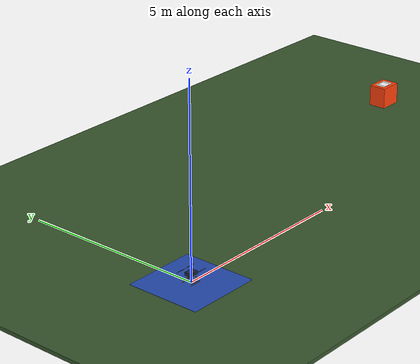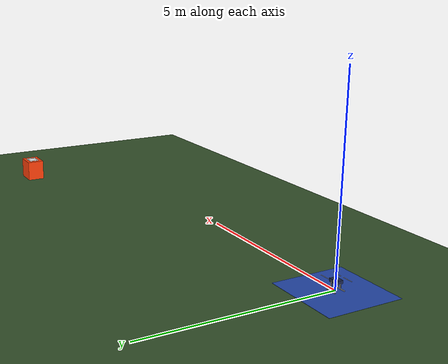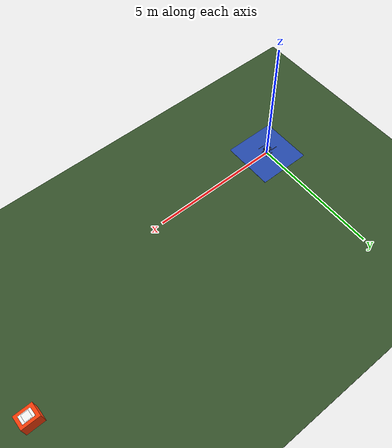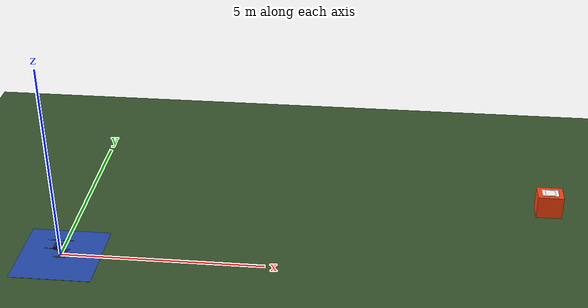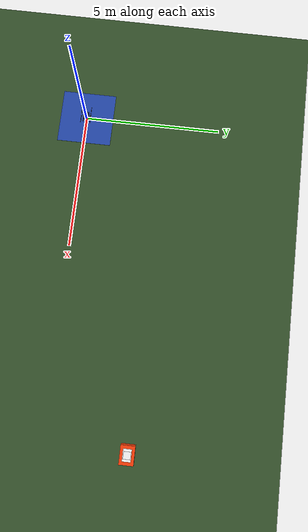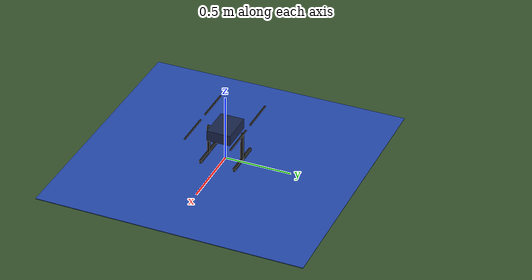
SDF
<?xml version='1.0' encoding='utf-8'?>
<sdf version="1.8">
  <world name="addc">
    <physics name="default" type="ignored">
      <max_step_size>0.004</max_step_size>
      <real_time_factor>1.0</real_time_factor>
    </physics>
    <gravity>0 0 -9.80665</gravity>
    <plugin filename="ignition-gazebo-physics-system" name="ignition::gazebo::systems::Physics" />
    <plugin filename="ignition-gazebo-user-commands-system" name="ignition::gazebo::systems::UserCommands" />
    <plugin filename="ignition-gazebo-scene-broadcaster-system" name="ignition::gazebo::systems::SceneBroadcaster" />
    <plugin filename="ignition-gazebo-imu-system" name="ignition::gazebo::systems::Imu" />
    <plugin filename="ignition-gazebo-air-pressure-system" name="ignition::gazebo::systems::AirPressure" />
    <plugin filename="ignition-gazebo-sensors-system" name="ignition::gazebo::systems::Sensors">
      <render_engine>ogre2</render_engine>
    </plugin>
    <light name="sun" type="directional">
      <pose>0 0 10 0 0 0</pose>
      <diffuse>0.9 0.9 0.9 1</diffuse>
      <specular>0.2 0.2 0.2 1</specular>
      <direction>-0.5 0.1 -0.9</direction>
      <cast_shadows>true</cast_shadows>
      <attenuation>
        <range>1000</range>
        <constant>0.9</constant>
        <linear>0.01</linear>
      </attenuation>
    </light>
    <model name="ground">
      <static>true</static>
      <link name="ground">
        <visual name="field">
          <pose>20 0 -0.05 0 0 0</pose>
          <geometry>
            <box>
              <size>120 100 0.1</size>
            </box>
          </geometry>
          <material>
            <ambient>0.22 0.34 0.18 1</ambient>
            <diffuse>0.22 0.34 0.18 1</diffuse>
          </material>
        </visual>
        <collision name="field_collision">
          <pose>20 0 -0.05 0 0 0</pose>
          <geometry>
            <box>
              <size>120 100 0.1</size>
            </box>
          </geometry>
        </collision>
      </link>
    </model>
    <model name="home_zone">
      <static>true</static>
      <link name="marker">
        <visual name="home">
          <pose>0 0 0.003 0 0 0</pose>
          <geometry>
            <box>
              <size>2 2 0.005</size>
            </box>
          </geometry>
          <material>
            <ambient>0.15 0.3 0.7 1</ambient>
            <diffuse>0.15 0.3 0.7 1</diffuse>
          </material>
        </visual>
      </link>
    </model>
    <include>
      <uri>model://intelligence_cache</uri>
      <pose>12 3 0 0 0 0</pose>
    </include>
    <include>
      <uri>model://addc_quad</uri>
      <name>addc_quad_0</name>
      <pose>0 0 0.24 0 0 0</pose>
    </include>
  </world>
</sdf>

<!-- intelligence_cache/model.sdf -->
<sdf version="1.8">
  <model name="intelligence_cache">
    <static>true</static>
    <link name="cache">
      <visual name="container">
        <pose>0 0 0.3 0 0 0</pose>
        <geometry>
          <box>
            <size>0.65 0.5 0.6</size>
          </box>
        </geometry>
        <material>
          <ambient>1 0.25 0.04 1</ambient>
          <diffuse>1 0.25 0.04 1</diffuse>
        </material>
      </visual>
      <collision name="container_collision">
        <pose>0 0 0.3 0 0 0</pose>
        <geometry>
          <box>
            <size>0.65 0.5 0.6</size>
          </box>
        </geometry>
      </collision>
      <visual name="a3_sheet">
        <pose>0 0 0.602 0 0 0</pose>
        <geometry>
          <box>
            <size>0.420 0.297 0.002</size>
          </box>
        </geometry>
        <material>
          <ambient>1 1 1 1</ambient>
          <diffuse>1 1 1 1</diffuse>
        </material>
      </visual>
      <visual name="qr">
        <pose>0 0 0.604 0 0 0</pose>
        <cast_shadows>false</cast_shadows>
        <geometry>
          <plane>
            <normal>0 0 1</normal>
            <size>0.25 0.25</size>
          </plane>
        </geometry>
        <material>
          <ambient>1 1 1 1</ambient>
          <diffuse>1 1 1 1</diffuse>
          <pbr>
            <metal>
              <albedo_map>model://intelligence_cache/materials/textures/qr.png</albedo_map>
              <metalness>0</metalness>
              <roughness>1</roughness>
            </metal>
          </pbr>
        </material>
      </visual>
    </link>
  </model>
</sdf>

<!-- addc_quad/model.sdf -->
<sdf version="1.8">
  <model name="addc_quad">
    <pose>0 0 0.24 0 0 0</pose>
    <self_collide>false</self_collide>
    <link name="base_link">
      <inertial>
        <mass>1.7</mass>
        <inertia>
          <ixx>0.0217</ixx>
          <iyy>0.0217</iyy>
          <izz>0.04</izz>
          <ixy>0</ixy>
          <ixz>0</ixz>
          <iyz>0</iyz>
        </inertia>
      </inertial>
      <visual name="body">
        <pose>0 0 0 0 0 0</pose>
        <geometry>
          <box>
            <size>0.25 0.18 0.08</size>
          </box>
        </geometry>
        <material>
          <ambient>0.1 0.15 0.3 1</ambient>
          <diffuse>0.1 0.15 0.3 1</diffuse>
        </material>
      </visual>
      <collision name="body_collision">
        <pose>0 0 0 0 0 0</pose>
        <geometry>
          <box>
            <size>0.25 0.18 0.08</size>
          </box>
        </geometry>
      </collision>
      <visual name="leg_0">
        <pose>0 -0.13 -0.22 0 0 0</pose>
        <geometry>
          <box>
            <size>0.3 0.02 0.02</size>
          </box>
        </geometry>
        <material>
          <ambient>0.1 0.1 0.1 1</ambient>
          <diffuse>0.1 0.1 0.1 1</diffuse>
        </material>
      </visual>
      <collision name="leg_0_collision">
        <pose>0 -0.13 -0.22 0 0 0</pose>
        <geometry>
          <box>
            <size>0.3 0.02 0.02</size>
          </box>
        </geometry>
      </collision>
      <visual name="strut_0">
        <pose>0 -0.13 -0.11 0 0 0</pose>
        <geometry>
          <box>
            <size>0.02 0.02 0.22</size>
          </box>
        </geometry>
        <material>
          <ambient>0.1 0.1 0.1 1</ambient>
          <diffuse>0.1 0.1 0.1 1</diffuse>
        </material>
      </visual>
      <collision name="strut_0_collision">
        <pose>0 -0.13 -0.11 0 0 0</pose>
        <geometry>
          <box>
            <size>0.02 0.02 0.22</size>
          </box>
        </geometry>
      </collision>
      <visual name="leg_1">
        <pose>0 0.13 -0.22 0 0 0</pose>
        <geometry>
          <box>
            <size>0.3 0.02 0.02</size>
          </box>
        </geometry>
        <material>
          <ambient>0.1 0.1 0.1 1</ambient>
          <diffuse>0.1 0.1 0.1 1</diffuse>
        </material>
      </visual>
      <collision name="leg_1_collision">
        <pose>0 0.13 -0.22 0 0 0</pose>
        <geometry>
          <box>
            <size>0.3 0.02 0.02</size>
          </box>
        </geometry>
      </collision>
      <visual name="strut_1">
        <pose>0 0.13 -0.11 0 0 0</pose>
        <geometry>
          <box>
            <size>0.02 0.02 0.22</size>
          </box>
        </geometry>
        <material>
          <ambient>0.1 0.1 0.1 1</ambient>
          <diffuse>0.1 0.1 0.1 1</diffuse>
        </material>
      </visual>
      <collision name="strut_1_collision">
        <pose>0 0.13 -0.11 0 0 0</pose>
        <geometry>
          <box>
            <size>0.02 0.02 0.22</size>
          </box>
        </geometry>
      </collision>
      <sensor name="imu_sensor" type="imu">
        <always_on>true</always_on>
        <update_rate>250</update_rate>
      </sensor>
      <sensor name="air_pressure_sensor" type="air_pressure">
        <always_on>true</always_on>
        <update_rate>50</update_rate>
      </sensor>
      <sensor name="discovery_camera" type="camera">
        <pose>0.2 0.0 -0.05 0 0.4363323129985824 0</pose>
        <always_on>true</always_on>
        <update_rate>15.0</update_rate>
        <topic>/camera/discovery/image</topic>
        <camera name="discovery">
          <horizontal_fov>1.0471975511965976</horizontal_fov>
          <optical_frame_id>discovery_camera_optical</optical_frame_id>
          <camera_info_topic>/camera/discovery/camera_info</camera_info_topic>
          <image>
            <width>1920</width>
            <height>1080</height>
            <format>R8G8B8</format>
          </image>
          <clip>
            <near>0.05</near>
            <far>100</far>
          </clip>
        </camera>
      </sensor>
      <sensor name="down_camera" type="camera">
        <pose>0.0 0.0 -0.1 0 1.5707963267948966 0</pose>
        <always_on>true</always_on>
        <update_rate>15.0</update_rate>
        <topic>/camera/down/image</topic>
        <camera name="down">
          <horizontal_fov>1.0471975511965976</horizontal_fov>
          <optical_frame_id>down_camera_optical</optical_frame_id>
          <camera_info_topic>/camera/down/camera_info</camera_info_topic>
          <image>
            <width>1920</width>
            <height>1080</height>
            <format>R8G8B8</format>
          </image>
          <clip>
            <near>0.05</near>
            <far>100</far>
          </clip>
        </camera>
      </sensor>
    </link>
    <link name="rotor_0">
      <pose>0.174 -0.174 0.06 0 0 0</pose>
      <inertial>
        <mass>0.016</mass>
        <inertia>
          <ixx>3.85e-07</ixx>
          <iyy>2.61e-05</iyy>
          <izz>2.65e-05</izz>
        </inertia>
      </inertial>
      <visual name="propeller">
        <pose>0 0 0 0 0 0</pose>
        <geometry>
          <box>
            <size>0.28 0.015 0.003</size>
          </box>
        </geometry>
        <material>
          <ambient>0.1 0.1 0.1 1</ambient>
          <diffuse>0.1 0.1 0.1 1</diffuse>
        </material>
      </visual>
    </link>
    <joint name="rotor_0_joint" type="revolute">
      <parent>base_link</parent>
      <child>rotor_0</child>
      <axis>
        <xyz>0 0 1</xyz>
        <limit>
          <lower>-1e16</lower>
          <upper>1e16</upper>
        </limit>
      </axis>
    </joint>
    <plugin filename="ignition-gazebo-multicopter-motor-model-system" name="ignition::gazebo::systems::MulticopterMotorModel">
      <robotNamespace>addc_quad_0</robotNamespace>
      <jointName>rotor_0_joint</jointName>
      <linkName>rotor_0</linkName>
      <turningDirection>ccw</turningDirection>
      <timeConstantUp>0.0125</timeConstantUp>
      <timeConstantDown>0.025</timeConstantDown>
      <maxRotVelocity>1000</maxRotVelocity>
      <motorConstant>8.54858e-06</motorConstant>
      <momentConstant>0.016</momentConstant>
      <commandSubTopic>command/motor_speed</commandSubTopic>
      <motorNumber>0</motorNumber>
      <rotorDragCoefficient>8.06428e-05</rotorDragCoefficient>
      <rollingMomentCoefficient>1e-06</rollingMomentCoefficient>
      <rotorVelocitySlowdownSim>10</rotorVelocitySlowdownSim>
      <motorType>velocity</motorType>
    </plugin>
    <link name="rotor_1">
      <pose>-0.174 0.174 0.06 0 0 0</pose>
      <inertial>
        <mass>0.016</mass>
        <inertia>
          <ixx>3.85e-07</ixx>
          <iyy>2.61e-05</iyy>
          <izz>2.65e-05</izz>
        </inertia>
      </inertial>
      <visual name="propeller">
        <pose>0 0 0 0 0 0</pose>
        <geometry>
          <box>
            <size>0.28 0.015 0.003</size>
          </box>
        </geometry>
        <material>
          <ambient>0.1 0.1 0.1 1</ambient>
          <diffuse>0.1 0.1 0.1 1</diffuse>
        </material>
      </visual>
    </link>
    <joint name="rotor_1_joint" type="revolute">
      <parent>base_link</parent>
      <child>rotor_1</child>
      <axis>
        <xyz>0 0 1</xyz>
        <limit>
          <lower>-1e16</lower>
          <upper>1e16</upper>
        </limit>
      </axis>
    </joint>
    <plugin filename="ignition-gazebo-multicopter-motor-model-system" name="ignition::gazebo::systems::MulticopterMotorModel">
      <robotNamespace>addc_quad_0</robotNamespace>
      <jointName>rotor_1_joint</jointName>
      <linkName>rotor_1</linkName>
      <turningDirection>ccw</turningDirection>
      <timeConstantUp>0.0125</timeConstantUp>
      <timeConstantDown>0.025</timeConstantDown>
      <maxRotVelocity>1000</maxRotVelocity>
      <motorConstant>8.54858e-06</motorConstant>
      <momentConstant>0.016</momentConstant>
      <commandSubTopic>command/motor_speed</commandSubTopic>
      <motorNumber>1</motorNumber>
      <rotorDragCoefficient>8.06428e-05</rotorDragCoefficient>
      <rollingMomentCoefficient>1e-06</rollingMomentCoefficient>
      <rotorVelocitySlowdownSim>10</rotorVelocitySlowdownSim>
      <motorType>velocity</motorType>
    </plugin>
    <link name="rotor_2">
      <pose>0.174 0.174 0.06 0 0 0</pose>
      <inertial>
        <mass>0.016</mass>
        <inertia>
          <ixx>3.85e-07</ixx>
          <iyy>2.61e-05</iyy>
          <izz>2.65e-05</izz>
        </inertia>
      </inertial>
      <visual name="propeller">
        <pose>0 0 0 0 0 0</pose>
        <geometry>
          <box>
            <size>0.28 0.015 0.003</size>
          </box>
        </geometry>
        <material>
          <ambient>0.1 0.1 0.1 1</ambient>
          <diffuse>0.1 0.1 0.1 1</diffuse>
        </material>
      </visual>
    </link>
    <joint name="rotor_2_joint" type="revolute">
      <parent>base_link</parent>
      <child>rotor_2</child>
      <axis>
        <xyz>0 0 1</xyz>
        <limit>
          <lower>-1e16</lower>
          <upper>1e16</upper>
        </limit>
      </axis>
    </joint>
    <plugin filename="ignition-gazebo-multicopter-motor-model-system" name="ignition::gazebo::systems::MulticopterMotorModel">
      <robotNamespace>addc_quad_0</robotNamespace>
      <jointName>rotor_2_joint</jointName>
      <linkName>rotor_2</linkName>
      <turningDirection>cw</turningDirection>
      <timeConstantUp>0.0125</timeConstantUp>
      <timeConstantDown>0.025</timeConstantDown>
      <maxRotVelocity>1000</maxRotVelocity>
      <motorConstant>8.54858e-06</motorConstant>
      <momentConstant>0.016</momentConstant>
      <commandSubTopic>command/motor_speed</commandSubTopic>
      <motorNumber>2</motorNumber>
      <rotorDragCoefficient>8.06428e-05</rotorDragCoefficient>
      <rollingMomentCoefficient>1e-06</rollingMomentCoefficient>
      <rotorVelocitySlowdownSim>10</rotorVelocitySlowdownSim>
      <motorType>velocity</motorType>
    </plugin>
    <link name="rotor_3">
      <pose>-0.174 -0.174 0.06 0 0 0</pose>
      <inertial>
        <mass>0.016</mass>
        <inertia>
          <ixx>3.85e-07</ixx>
          <iyy>2.61e-05</iyy>
          <izz>2.65e-05</izz>
        </inertia>
      </inertial>
      <visual name="propeller">
        <pose>0 0 0 0 0 0</pose>
        <geometry>
          <box>
            <size>0.28 0.015 0.003</size>
          </box>
        </geometry>
        <material>
          <ambient>0.1 0.1 0.1 1</ambient>
          <diffuse>0.1 0.1 0.1 1</diffuse>
        </material>
      </visual>
    </link>
    <joint name="rotor_3_joint" type="revolute">
      <parent>base_link</parent>
      <child>rotor_3</child>
      <axis>
        <xyz>0 0 1</xyz>
        <limit>
          <lower>-1e16</lower>
          <upper>1e16</upper>
        </limit>
      </axis>
    </joint>
    <plugin filename="ignition-gazebo-multicopter-motor-model-system" name="ignition::gazebo::systems::MulticopterMotorModel">
      <robotNamespace>addc_quad_0</robotNamespace>
      <jointName>rotor_3_joint</jointName>
      <linkName>rotor_3</linkName>
      <turningDirection>cw</turningDirection>
      <timeConstantUp>0.0125</timeConstantUp>
      <timeConstantDown>0.025</timeConstantDown>
      <maxRotVelocity>1000</maxRotVelocity>
      <motorConstant>8.54858e-06</motorConstant>
      <momentConstant>0.016</momentConstant>
      <commandSubTopic>command/motor_speed</commandSubTopic>
      <motorNumber>3</motorNumber>
      <rotorDragCoefficient>8.06428e-05</rotorDragCoefficient>
      <rollingMomentCoefficient>1e-06</rollingMomentCoefficient>
      <rotorVelocitySlowdownSim>10</rotorVelocitySlowdownSim>
      <motorType>velocity</motorType>
    </plugin>
  </model>
</sdf>
